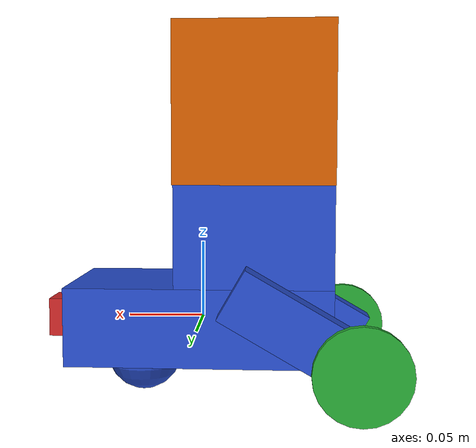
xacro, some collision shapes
<?xml version="1.0"?>

<robot name="eng405_bot" xmlns:xacro="http://www.ros.org/wiki/xacro">

	<!-- Gazebo file used to load the plugins for gazebo for DD, camera, and LRF -->
	<xacro:include filename="$(find eng405_bot)/urdf/eng405_bot.gazebo"/>

	<!-- Import the Rviz colors -->
	<xacro:include filename="$(find eng405_bot)/urdf/materials.xacro"/>

	<!-- Robot footprint -->
	<link name="robot_footprint"></link>

	<!-- Joint from robot footprint to chassis -->
	<joint name="robot_footprint_joint" type="fixed">
		<origin xyz="0 0 0" rpy="0 0 0"/>
		<parent link="robot_footprint"/>
		<child link="chassis"/>
	</joint>

	<!--Robot main chassis-->
	<link name="chassis">
		<pose>0 0 0.1 0 0 0</pose>

		<inertial>
			<mass value="3.0"/>
			<origin xyz="0 0 0" rpy="0 0 0"/>
			<inertia
				ixx="0.02" ixy="0" ixz="0"
				iyy="0.02" iyz="0"
				izz="0.02"
			/>
		</inertial>

		<!-- main chassis -->
		<collision name="main_chassis_collision">
			<origin xyz="0 0 0" rpy="0 0 0"/>
			<geometry>
				<box size="0.17 0.09 0.05" />
			</geometry>
		</collision>

		<visual name="main_chassis_visual">
			<origin xyz="0 0 0" rpy="0 0 0"/>
			<geometry>
				<box size="0.17 0.09 0.05"/>
			</geometry>
			<material name="blue"/>
		</visual>

		<!-- Battery brick -->
		<collision name="battery_brick_collision">
			<origin xyz="-0.035 0 0.06" rpy="0 0 0"/>
			<geometry>
				<box size="0.1 0.09 0.07"/>
			</geometry>
		</collision>

		<visual name="battery_brick_visual">
			<origin xyz="-0.035 0 0.06" rpy="0 0 0"/>
			<geometry>
				<box size="0.1 0.09 0.07"/>
			</geometry>
			<material name="blue"/>
		</visual>

		<!-- right chassis -->
		<collision name="right_chassis_collision">
			<origin xyz="-0.065 -0.055 0" rpy="0 -0.52359 0"/>
			<geometry>
				<box size="0.1 0.02 0.035" />
			</geometry>
		</collision>

		<visual name="right_chassis_visual">
			<origin xyz="-0.065 -0.055 0" rpy="0 -0.52359 0"/>
			<geometry>
				<box size="0.1 0.02 0.035"/>
			</geometry>
			<material name="blue"/>
		</visual>

		<!-- left chassis -->
		<collision name="left_chassis_collision">
			<origin xyz="-0.065 0.055 0" rpy="0 -0.52359 0"/>
			<geometry>
				<box size="0.1 0.02 0.035" />
			</geometry>
		</collision>

		<visual name="left_chassis_visual">
			<origin xyz="-0.065 0.055 0" rpy="0 -0.52359 0"/>
			<geometry>
				<box size="0.1 0.02 0.035"/>
			</geometry>
			<material name="blue"/>
		</visual>

		<!-- Castor at front of robot -->
		<collision name="front_caster_collision">
			<origin xyz="0.04 0 -0.025" rpy="0 0 0"/>
			<geometry>
				<sphere radius="0.025"/>
			</geometry>
			<surface>
        		<friction>
          			<ode>
            			<mu>0.0</mu>
            			<mu2>0.0</mu2>
            			<slip1>1.0</slip1>
            			<slip2>1.0</slip2>
          			</ode>
        		</friction>
      		</surface>
		</collision>

		<visual name="front_caster_visual">
			<origin xyz="0.04 0 -0.025" rpy="0 0 0"/>
			<geometry>
				<sphere radius="0.025"/>
			</geometry>
		</visual>
	</link>

	<!-- Robot right wheel -->
	<link name="right_wheel">

		<inertial>
			<mass value="1"/>
			<origin xyz="0 0 0" rpy="0 1.5707 1.5707"/>
			<inertia
				ixx="0.02" ixy="0" ixz="0"
				iyy="0.02" iyz="0"
				izz="0.02"
			/>
		</inertial>

		<collision>
			<origin xyz="0 0 0" rpy="0 1.5707 1.5707"/>
			<geometry>
				<cylinder length="0.005" radius="0.03"/>
			</geometry>
		</collision>

		<visual>
			<origin xyz="0 0 0" rpy="0 1.5707 1.5707"/>
			<geometry>
				<cylinder length="0.005" radius="0.03"/>
			</geometry>
			<material name="green"/>
		</visual>
	</link>

	<!-- Robot left wheel -->
	<link name="left_wheel">

		<inertial>
			<mass value="1"/>
			<origin xyz="0 0 0" rpy="0 1.5707 1.5707"/>
			<inertia
				ixx="0.02" ixy="0" ixz="0"
				iyy="0.02" iyz="0"
				izz="0.02"
			/>
		</inertial>

		<collision>
			<origin xyz="0 0 0" rpy="0 1.5707 1.5707"/>
			<geometry>
				<cylinder length="0.005" radius="0.03"/>
			</geometry>
		</collision>

		<visual>
			<origin xyz="0 0 0" rpy="0 1.5707 1.5707"/>
			<geometry>
				<cylinder length="0.005" radius="0.03"/>
			</geometry>
			<material name="green"/>
		</visual>
	</link>

	<!-- Joint to connect right wheel to chassis -->
	<joint type="continuous" name="right_wheel_hinge">
		<origin xyz="-0.099641 -0.075 -0.02" rpy="0 0 0"/>
		<child link="right_wheel"/>
		<parent link="chassis"/>
		<axis xyz="0 1 0" rpy="0 0 0"/>
		<limit effort="10000" velocity="1000"/>
		<dynamics damping="1.0" friction="1.0"/>
	</joint>

	<!-- Joint to connect left wheel to chassis -->
	<joint type="continuous" name="left_wheel_hinge">
		<origin xyz="-0.099641 0.075 -0.02" rpy="0 0 0"/>
		<child link="left_wheel"/>
		<parent link="chassis"/>
		<axis xyz="0 1 0" rpy="0 0 0"/>
		<limit effort="10000" velocity="1000"/>
		<dynamics damping="1.0" friction="1.0"/>
	</joint>

	<!-- Camera -->
	<link name="camera">
		<inertial>
			<mass value="0.1"/>
			<origin xyz="0 0 0" rpy="0 0 0"/>
			<inertia
				ixx="1e-6" ixy="0" ixz="0"
				iyy="1e-6" iyz="0"
				izz="1e-6"
			/>
		</inertial>

		<collision>
			<origin xyz="0 0 0" rpy="0 0 0"/>
			<geometry>
				<box size="0.025 0.025 0.025"/>
			</geometry>
		</collision>

		<visual>
			<origin xyz="0 0 0" rpy="0 0 0"/>
			<geometry>
				<box size="0.025 0.025 0.025"/>
			</geometry>
		</visual>
	</link>

	<!-- Joint connecting the camera to the chassis -->
	<joint type="fixed" name="camera_joint">
		<origin xyz="0.09 0 0" rpy="0 0 0"/>
		<parent link="chassis"/>
		<child link="camera"/>
	</joint>

	<!-- Laser Range Finder -->
	<link name="hokuyo">
		<inertial>
			<mass value="0.1"/>
			<origin xyz="0 0 0" rpy="0 0 0"/>
			<inertia
				ixx="1e-6" ixy="0" ixz="0"
				iyy="1e-6" iyz="0"
				izz="1e-6"
			/>
		</inertial>

		<collision>
			<origin xyz="0 0 0" rpy="0 0 0"/>
			<geometry>
				<box size="0.1 0.1 0.1"/>
			</geometry>
		</collision>

		<visual>
			<origin xyx="0 0 0" rpy="0 0 0"/>
			<geometry>
				<mesh filename="package://eng405_bot/meshes/hokuyo.dae"/>
			</geometry>
		</visual>
	</link>

	<!-- Joint connecting the chassis with the LRF -->
	<joint type="fixed" name="hokuyo_joint">
		<origin xyz="-0.035 0 0.14" rpy="0 0 0"/>
		<parent link="chassis"/>
		<child link="hokuyo"/>
	</joint>
</robot>
